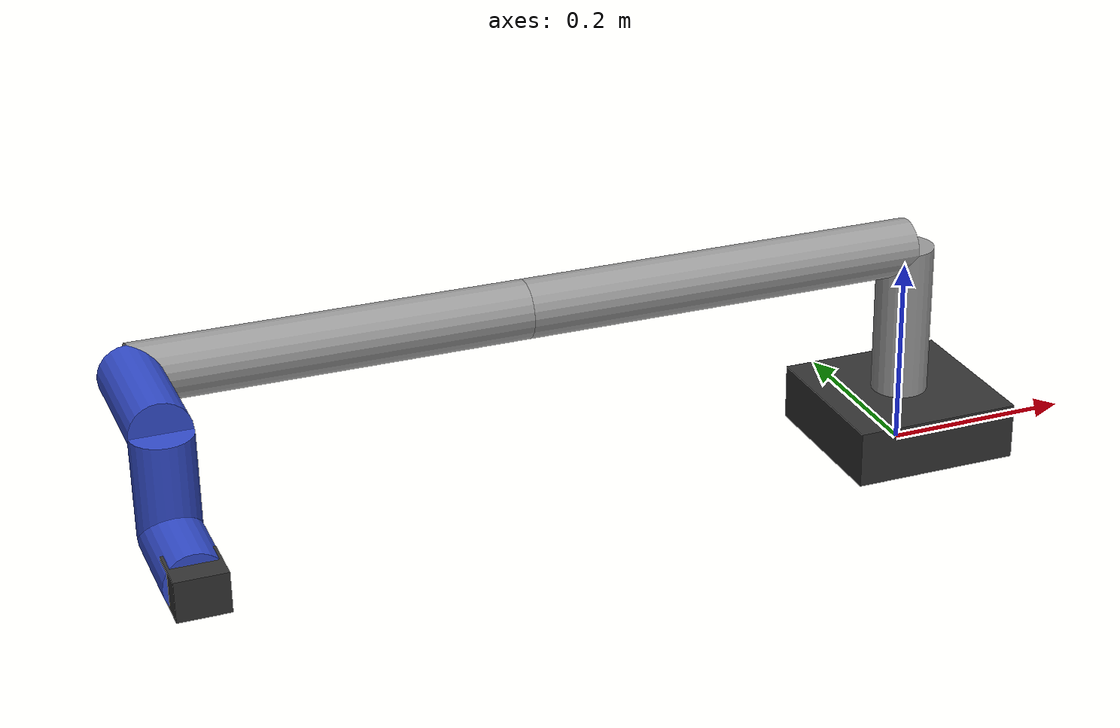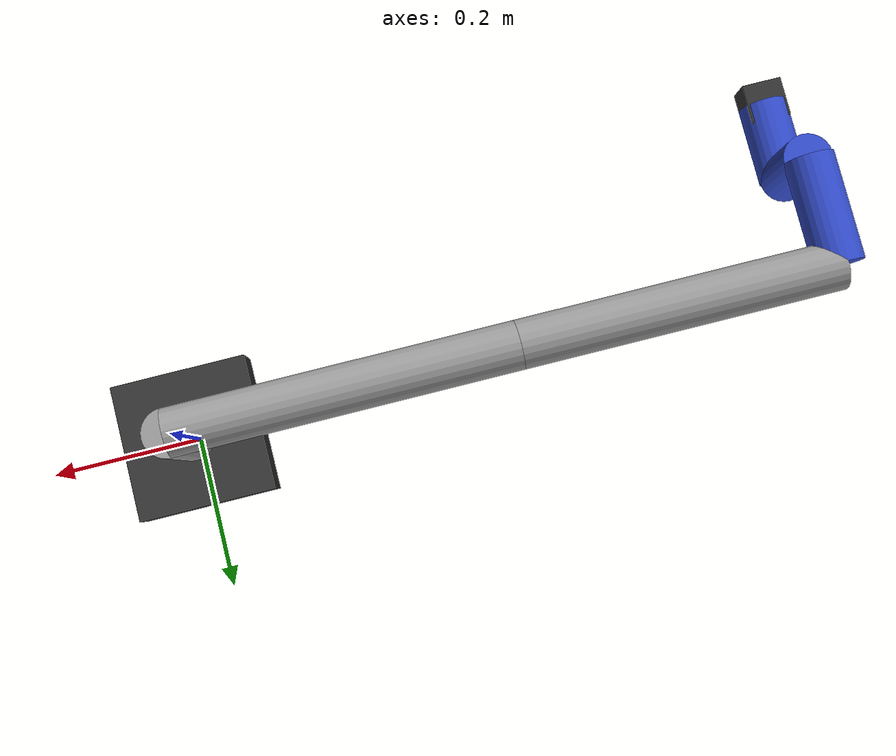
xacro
<?xml version="1.0"?>
<robot xmlns:xacro="http://ros.org/wiki/xacro" name="ur5e_simple">

  <xacro:arg name="ros2_control_params" default=""/>

  <xacro:arg name="d1" default="0.1625"/>
  <xacro:arg name="a2" default="0.425"/>
  <xacro:arg name="a3" default="0.3922"/>
  <xacro:arg name="d4" default="0.1333"/>
  <xacro:arg name="d5" default="0.0997"/>
  <xacro:arg name="d6" default="0.0996"/>

  <!-- Visual thickness -->
  <xacro:arg name="r_link" default="0.03"/>

  <!-- Base box -->
  <xacro:arg name="base_x" default="0.18"/>
  <xacro:arg name="base_y" default="0.18"/>
  <xacro:arg name="base_z" default="0.06"/>

  <!-- Masses (keep non-zero for Gazebo stability) -->
  <xacro:arg name="m_base" default="5.0"/>
  <xacro:arg name="m_link" default="2.0"/>
  <xacro:arg name="m_tool" default="0.2"/>

  <!-- Joint limits (generic). If you want UR's “unrestricted range” you can keep ±2π. -->
  <xacro:arg name="joint_vel" default="2.0"/>
  <xacro:arg name="joint_effort" default="50.0"/>

  <!-- Convenience properties -->
  <xacro:property name="d1" value="$(arg d1)"/>
  <xacro:property name="a2" value="$(arg a2)"/>
  <xacro:property name="a3" value="$(arg a3)"/>
  <xacro:property name="d4" value="$(arg d4)"/>
  <xacro:property name="d5" value="$(arg d5)"/>
  <xacro:property name="d6" value="$(arg d6)"/>
  <xacro:property name="a2_abs" value="$(arg a2)"/>
  <xacro:property name="a3_abs" value="$(arg a3)"/>
  <xacro:property name="r"  value="$(arg r_link)"/>

  <!-- =========================
       Inertial macros (Gazebo-safe)
       ========================= -->
  <xacro:macro name="inertial_box" params="mass x y z">
    <inertial>
      <mass value="${mass}"/>
      <inertia ixx="${mass*(y*y + z*z)/12.0}" ixy="0.0" ixz="0.0"
               iyy="${mass*(x*x + z*z)/12.0}" iyz="0.0"
               izz="${mass*(x*x + y*y)/12.0}"/>
    </inertial>
  </xacro:macro>

  <xacro:macro name="inertial_cylinder" params="mass radius length axis">
    <!-- axis = 'x' or 'z' (for simplicity) -->
    <inertial>
      <mass value="${mass}"/>
      <!-- Approx inertia; good enough for sim stability -->
      <xacro:if value="${axis == 'z'}">
        <inertia ixx="${mass*(3*radius*radius + length*length)/12.0}" ixy="0.0" ixz="0.0"
                 iyy="${mass*(3*radius*radius + length*length)/12.0}" iyz="0.0"
                 izz="${mass*(radius*radius)/2.0}"/>
      </xacro:if>
      <xacro:if value="${axis == 'x'}">
        <!-- cylinder aligned with X: swap axes compared to Z-aligned -->
        <inertia ixx="${mass*(radius*radius)/2.0}" ixy="0.0" ixz="0.0"
                 iyy="${mass*(3*radius*radius + length*length)/12.0}" iyz="0.0"
                 izz="${mass*(3*radius*radius + length*length)/12.0}"/>
      </xacro:if>
        <!-- Cylinder aligned with Y -->
      <xacro:if value="${axis == 'y'}">
        <inertia ixx="${mass*(3*radius*radius + length*length)/12.0}" ixy="0.0" ixz="0.0"
                 iyy="${mass*(radius*radius)/2.0}" iyz="0.0"
                 izz="${mass*(3*radius*radius + length*length)/12.0}"/>
      </xacro:if>
    </inertial>
  </xacro:macro>

  <!-- =========================
       Materials
       ========================= -->
  <material name="grey"><color rgba="0.6 0.6 0.6 1.0"/></material>
  <material name="dark"><color rgba="0.2 0.2 0.2 1.0"/></material>
  <material name="blue"><color rgba="0.2 0.3 0.8 1.0"/></material>

  <!-- =========================
       Links
       ========================= -->
  <link name="world"/>

  <joint name="world_to_base" type="fixed">
    <parent link="world"/>
    <child link="base_link"/>
    <origin xyz="0 0 0" rpy="0 0 0"/>
  </joint>

  <link name="base_link">
    <visual>
      <origin xyz="0 0 ${$(arg base_z)/2.0}" rpy="0 0 0"/>
      <geometry>
        <box size="$(arg base_x) $(arg base_y) $(arg base_z)"/>
      </geometry>
      <material name="dark"/>
    </visual>
    <collision>
      <origin xyz="0 0 ${$(arg base_z)/2.0}" rpy="0 0 0"/>
      <geometry>
        <box size="$(arg base_x) $(arg base_y) $(arg base_z)"/>
      </geometry>
    </collision>
    <xacro:inertial_box mass="$(arg m_base)" x="$(arg base_x)" y="$(arg base_y)" z="$(arg base_z)"/>
  </link>

  <!-- Generic cylinder link with selectable axis (x or z) -->
  <xacro:macro name="cyl_link" params="name length axis mass mat">
    <link name="${name}">
      <visual>
        <!-- Place cylinder centered along its axis -->
        <xacro:if value="${axis == 'z'}">
          <origin xyz="0 0 ${length/2.0}" rpy="0 0 0"/>
        </xacro:if>
        <xacro:if value="${axis == 'x'}">
          <origin xyz="${length/2.0} 0 0" rpy="0 1.57079632679 0"/>
        </xacro:if>
        <xacro:if value="${axis == 'y'}">
          <origin xyz="0 ${length/2.0} 0" rpy="1.57079632679 0 0"/>
        </xacro:if>
        <geometry>
          <cylinder radius="${r}" length="${length}"/>
        </geometry>
        <material name="${mat}"/>
      </visual>
      <collision>
        <xacro:if value="${axis == 'z'}">
          <origin xyz="0 0 ${length/2.0}" rpy="0 0 0"/>
        </xacro:if>
        <xacro:if value="${axis == 'x'}">
          <origin xyz="${length/2.0} 0 0" rpy="0 1.57079632679 0"/>
        </xacro:if>
        <xacro:if value="${axis == 'y'}">
          <origin xyz="0 ${length/2.0} 0" rpy="1.57079632679 0 0"/>
        </xacro:if>
        <geometry>
          <cylinder radius="${r}" length="${length}"/>
        </geometry>
      </collision>
      <xacro:inertial_cylinder mass="${mass}" radius="${r}" length="${length}" axis="${axis}"/>
    </link>
  </xacro:macro>

  <!-- UR5e kinematic “segments” (simplified) -->
  <!-- link1: vertical offset d1 -->
  <xacro:cyl_link name="link1" length="${d1}"     axis="z" mass="$(arg m_link)" mat="grey"/>
  <!-- link2: shoulder-to-elbow along |a2| in X -->
  <xacro:cyl_link name="link2" length="${a2_abs}" axis="x" mass="$(arg m_link)" mat="grey"/>
  <!-- link3: elbow-to-wrist1 along |a3| in X -->
  <xacro:cyl_link name="link3" length="${a3_abs}" axis="x" mass="$(arg m_link)" mat="grey"/>
  <!-- link4: wrist1 offset d4 in Z -->
  <xacro:cyl_link name="link4" length="${d4}"     axis="y" mass="$(arg m_link)" mat="blue"/>
  <!-- link5: wrist2 offset d5 in Z -->
  <xacro:cyl_link name="link5" length="${d5}"     axis="y" mass="$(arg m_link)" mat="blue"/>
  <!-- link6: wrist3 to flange d6 in Z -->
  <xacro:cyl_link name="link6" length="${d6}"     axis="y" mass="$(arg m_link)" mat="blue"/>

  <!-- Tool / flange marker -->
  <link name="tool0">
    <visual>
      <origin xyz="0 0 0" rpy="0 0 0"/>
      <geometry>
        <box size="0.05 0.05 0.04"/>
      </geometry>
      <material name="dark"/>
    </visual>
    <collision>
      <origin xyz="0 0 0.02" rpy="0 0 0"/>
      <geometry>
        <box size="0.05 0.05 0.04"/>
      </geometry>
    </collision>
    <xacro:inertial_box mass="$(arg m_tool)" x="0.05" y="0.05" z="0.04"/>
  </link>

  <!-- joint1 (shoulder_pan): base rotation -->
  <joint name="joint1" type="revolute">
    <parent link="base_link"/>
    <child link="link1"/>
    <origin xyz="0 0 $(arg base_z)" rpy="0 0 0"/>
    <axis xyz="0 0 1"/>
    <limit lower="-6.28318530718" upper="6.28318530718" effort="$(arg joint_effort)" velocity="$(arg joint_vel)"/>
    <dynamics damping="0.2" friction="0.0"/>
  </joint>

  <!-- joint2 (shoulder_lift): at top of link1 -->
  <joint name="joint2" type="revolute">
    <parent link="link1"/>
    <child link="link2"/>
    <origin xyz="0 0 ${d1}" rpy="0 -3.14 0"/>
    <axis xyz="0 -1 0"/>
    <limit lower="-6.28318530718" upper="6.28318530718" effort="$(arg joint_effort)" velocity="$(arg joint_vel)"/>
    <dynamics damping="0.2" friction="0.0"/>
  </joint>

  <!-- joint3 (elbow): at end of link2 (X) -->
  <joint name="joint3" type="revolute">
    <parent link="link2"/>
    <child link="link3"/>
    <origin xyz="${a2_abs} 0 0" rpy="0 0 0"/>
    <axis xyz="0 -1 0"/>
    <limit lower="-6.28318530718" upper="6.28318530718" effort="$(arg joint_effort)" velocity="$(arg joint_vel)"/>
    <dynamics damping="0.2" friction="0.0"/>
  </joint>

  <!-- joint4 (wrist_1): at end of link3 (X) -->
  <joint name="joint4" type="revolute">
    <parent link="link3"/>
    <child link="link4"/>
    <origin xyz="${a3_abs} 0 0" rpy="-3.14 0 0"/>
    <axis xyz="0 1 0"/>
    <limit lower="-6.28318530718" upper="6.28318530718" effort="$(arg joint_effort)" velocity="$(arg joint_vel)"/>
    <dynamics damping="0.2" friction="0.0"/>
  </joint>

  <!-- joint5 (wrist_2): at end of link4 (Z) -->
  <joint name="joint5" type="revolute">
    <parent link="link4"/>
    <child link="link5"/>
    <origin xyz="0 ${d4} 0" rpy="-1.57 0 0"/>
    <axis xyz="0 1 0"/>
    <limit lower="-6.28318530718" upper="6.28318530718" effort="$(arg joint_effort)" velocity="$(arg joint_vel)"/>
    <dynamics damping="0.2" friction="0.0"/>
  </joint>

  <!-- joint6 (wrist_3): at end of link5 (Z) -->
  <joint name="joint6" type="revolute">
    <parent link="link5"/>
    <child link="link6"/>
    <origin xyz="0 ${d5} 0" rpy="1.57 0 0"/>
    <axis xyz="0 1 0"/>
    <limit lower="-6.28318530718" upper="6.28318530718" effort="$(arg joint_effort)" velocity="$(arg joint_vel)"/>
    <dynamics damping="0.2" friction="0.0"/>
  </joint>

  <joint name="tool0_fixed" type="fixed">
    <parent link="link6"/>
    <child link="tool0"/>
    <origin xyz="0 ${d6} 0" rpy="0 0 0"/>
  </joint>

  <!-- =========================
       ros2_control (gz_ros2_control)
       ========================= -->
  <ros2_control name="MyArmSystem" type="system">
    <hardware>
      <plugin>gz_ros2_control/GazeboSimSystem</plugin>
    </hardware>

    <joint name="joint1">
      <command_interface name="position"/>
      <state_interface name="position"/>
      <state_interface name="velocity"/>
    </joint>
    <joint name="joint2">
      <command_interface name="position"/>
      <state_interface name="position"/>
      <state_interface name="velocity"/>
    </joint>
    <joint name="joint3">
      <command_interface name="position"/>
      <state_interface name="position"/>
      <state_interface name="velocity"/>
    </joint>
    <joint name="joint4">
      <command_interface name="position"/>
      <state_interface name="position"/>
      <state_interface name="velocity"/>
    </joint>
    <joint name="joint5">
      <command_interface name="position"/>
      <state_interface name="position"/>
      <state_interface name="velocity"/>
    </joint>
    <joint name="joint6">
      <command_interface name="position"/>
      <state_interface name="position"/>
      <state_interface name="velocity"/>
    </joint>
  </ros2_control>

  <!-- Gazebo plugin hook -->
  <gazebo>
    <plugin name="ign_ros2_control::IgnitionROS2ControlPlugin"
            filename="libign_ros2_control-system.so">
      <parameters>$(arg ros2_control_params)</parameters>
    </plugin>
  </gazebo>

  <gazebo reference="link1">
    <material>Gazebo/Blue</material>
  </gazebo>

  <gazebo reference="link2">
    <material>Gazebo/Blue</material>
  </gazebo>

  <gazebo reference="link3">
    <material>Gazebo/Blue</material>
  </gazebo>

</robot>
